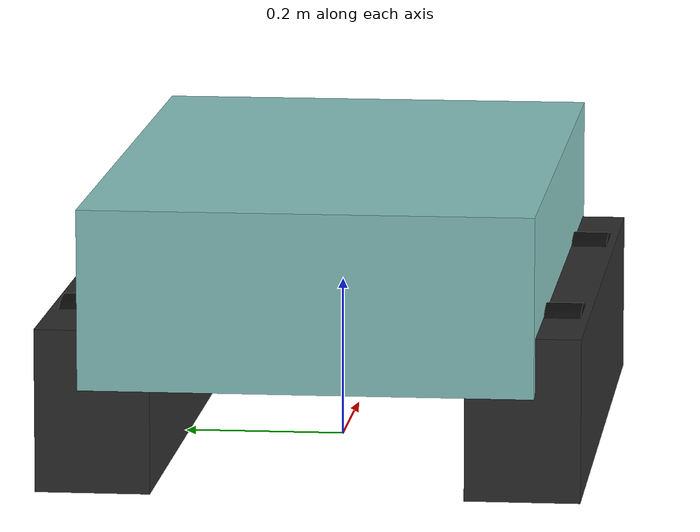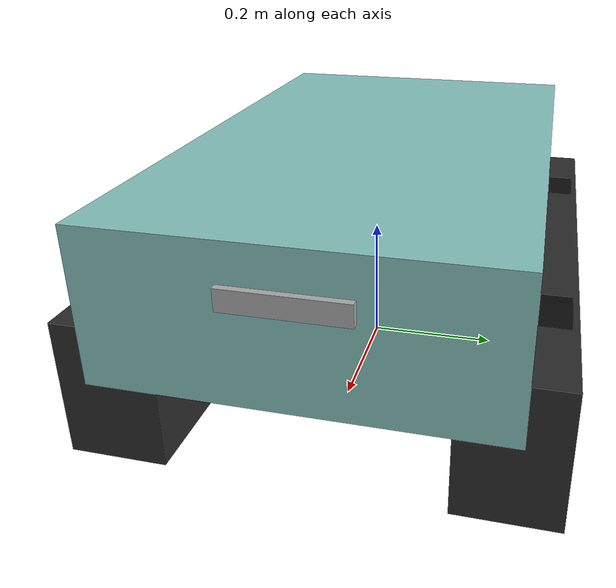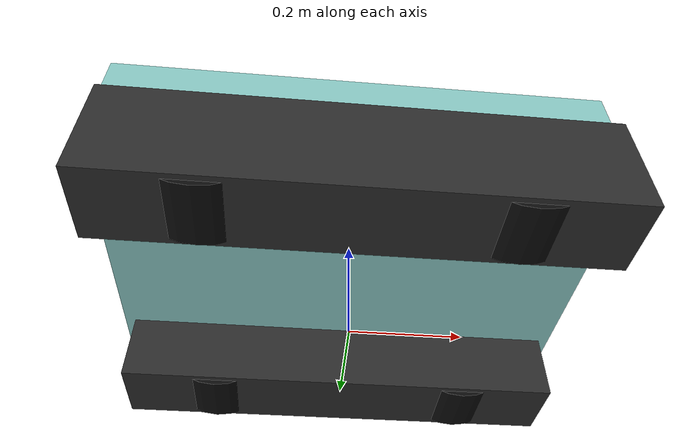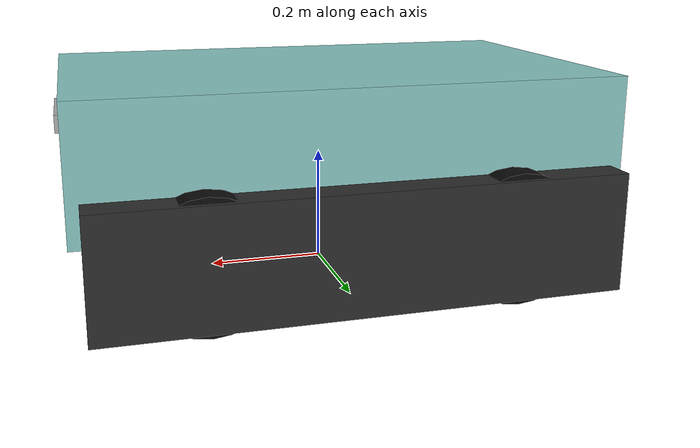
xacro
<?xml version="1.0"?>
<robot xmlns:xacro="http://www.ros.org/wiki/xacro" name="astra_robot">

  <!-- When true, Gazebo (Harmonic) sensor + plugin tags are included so the
       same model can be spawned in simulation. Set via:
         xacro astra_robot.urdf.xacro use_gazebo:=true -->
  <xacro:arg name="use_gazebo" default="false"/>

  <!-- ===================== Parameters (ARKOS-1, approx from drawing) ===================== -->
  <!-- Main body (the teal deck / frame) -->
  <xacro:property name="base_length"  value="0.90"/>
  <xacro:property name="base_width"   value="0.55"/>
  <xacro:property name="base_height"  value="0.22"/>
  <xacro:property name="base_mass"    value="100.0"/>
  <!-- height of the body bottom above the ground -->
  <xacro:property name="body_clearance" value="0.14"/>

  <!-- Tracks (visual shells) -->
  <xacro:property name="track_length" value="0.86"/>
  <xacro:property name="track_width"  value="0.14"/>
  <xacro:property name="track_height" value="0.20"/>

  <!-- Hidden drive wheels (skid-steer) -->
  <xacro:property name="wheel_radius" value="0.11"/>
  <xacro:property name="wheel_width"  value="0.12"/>
  <xacro:property name="wheel_mass"   value="5.0"/>
  <!-- lateral distance between left and right wheel centres -->
  <xacro:property name="wheel_separation" value="0.52"/>
  <!-- longitudinal distance between front and rear wheel axes -->
  <xacro:property name="wheel_base" value="0.50"/>

  <!-- Astra camera mounting: FRONT of the chassis, on top -->
  <xacro:property name="cam_x" value="0.44"/>
  <xacro:property name="cam_y" value="0.0"/>
  <xacro:property name="cam_z" value="0.18"/>

  <!-- Astra depth-to-RGB baseline (approx, from datasheet) -->
  <xacro:property name="cam_rgb_yoff"   value="-0.025"/>
  <xacro:property name="cam_depth_yoff" value="0.0"/>

  <xacro:property name="PI" value="3.14159265359"/>

  <!-- ===================== Inertia macros ===================== -->
  <xacro:macro name="box_inertia" params="m x y z">
    <inertial>
      <mass value="${m}"/>
      <inertia
        ixx="${m*(y*y+z*z)/12.0}" ixy="0.0" ixz="0.0"
        iyy="${m*(x*x+z*z)/12.0}" iyz="0.0"
        izz="${m*(x*x+y*y)/12.0}"/>
    </inertial>
  </xacro:macro>

  <xacro:macro name="cylinder_inertia" params="m r h">
    <inertial>
      <mass value="${m}"/>
      <inertia
        ixx="${m*(3*r*r+h*h)/12.0}" ixy="0.0" ixz="0.0"
        iyy="${m*(3*r*r+h*h)/12.0}" iyz="0.0"
        izz="${m*r*r/2.0}"/>
    </inertial>
  </xacro:macro>

  <!-- One hidden drive wheel. side: left(+1)/right(-1); lon: forward offset -->
  <xacro:macro name="drive_wheel" params="name reflect lon">
    <link name="${name}_wheel">
      <visual>
        <origin xyz="0 0 0" rpy="${PI/2} 0 0"/>
        <geometry>
          <cylinder radius="${wheel_radius}" length="${wheel_width}"/>
        </geometry>
        <material name="black"/>
      </visual>
      <collision>
        <origin xyz="0 0 0" rpy="${PI/2} 0 0"/>
        <geometry>
          <cylinder radius="${wheel_radius}" length="${wheel_width}"/>
        </geometry>
      </collision>
      <xacro:cylinder_inertia m="${wheel_mass}" r="${wheel_radius}" h="${wheel_width}"/>
    </link>

    <joint name="${name}_wheel_joint" type="continuous">
      <parent link="base_link"/>
      <child link="${name}_wheel"/>
      <origin xyz="${lon} ${reflect*wheel_separation/2.0} 0" rpy="0 0 0"/>
      <axis xyz="0 1 0"/>
      <dynamics damping="0.1" friction="0.2"/>
    </joint>
  </xacro:macro>

  <!-- Visual-only track shell covering the wheels on one side -->
  <xacro:macro name="track_visual" params="name reflect">
    <link name="${name}_track">
      <visual>
        <origin xyz="0 0 0" rpy="0 0 0"/>
        <geometry>
          <box size="${track_length} ${track_width} ${track_height}"/>
        </geometry>
        <material name="dark_grey"/>
      </visual>
      <!-- no collision: contact/drive is handled by the hidden wheels -->
      <inertial>
        <mass value="1.0"/>
        <inertia ixx="0.01" ixy="0" ixz="0" iyy="0.01" iyz="0" izz="0.01"/>
      </inertial>
    </link>
    <joint name="${name}_track_joint" type="fixed">
      <parent link="base_link"/>
      <child link="${name}_track"/>
      <origin xyz="0 ${reflect*wheel_separation/2.0} 0" rpy="0 0 0"/>
    </joint>
  </xacro:macro>

  <!-- ===================== Materials ===================== -->
  <material name="teal">      <color rgba="0.55 0.80 0.78 1.0"/></material>
  <material name="dark_grey"> <color rgba="0.18 0.18 0.18 1.0"/></material>
  <material name="light_grey"><color rgba="0.7 0.7 0.7 1.0"/></material>
  <material name="black">     <color rgba="0.05 0.05 0.05 1.0"/></material>

  <!-- ===================== base_footprint ===================== -->
  <!-- base_footprint sits on the ground directly below base_link -->
  <link name="base_footprint"/>

  <joint name="base_footprint_joint" type="fixed">
    <parent link="base_footprint"/>
    <child link="base_link"/>
    <!-- base_link origin at the wheel axis height -->
    <origin xyz="0 0 ${wheel_radius}" rpy="0 0 0"/>
  </joint>

  <!-- ===================== Body (chassis deck) ===================== -->
  <link name="base_link">
    <visual>
      <origin xyz="0 0 ${body_clearance - wheel_radius + base_height/2.0}" rpy="0 0 0"/>
      <geometry>
        <box size="${base_length} ${base_width} ${base_height}"/>
      </geometry>
      <material name="teal"/>
    </visual>
    <collision>
      <origin xyz="0 0 ${body_clearance - wheel_radius + base_height/2.0}" rpy="0 0 0"/>
      <geometry>
        <box size="${base_length} ${base_width} ${base_height}"/>
      </geometry>
    </collision>
    <xacro:box_inertia m="${base_mass}" x="${base_length}" y="${base_width}" z="${base_height}"/>
  </link>

  <!-- ===================== Tracks (visual) ===================== -->
  <xacro:track_visual name="left"  reflect="1"/>
  <xacro:track_visual name="right" reflect="-1"/>

  <!-- ===================== Drive wheels (4, hidden inside tracks) ===================== -->
  <xacro:drive_wheel name="front_left"  reflect="1"  lon="${ wheel_base/2.0}"/>
  <xacro:drive_wheel name="rear_left"   reflect="1"  lon="${-wheel_base/2.0}"/>
  <xacro:drive_wheel name="front_right" reflect="-1" lon="${ wheel_base/2.0}"/>
  <xacro:drive_wheel name="rear_right"  reflect="-1" lon="${-wheel_base/2.0}"/>

  <!-- ===================== Astra camera (FIXED to chassis, front) ===================== -->
  <link name="camera_link">
    <visual>
      <origin xyz="0 0 0" rpy="0 0 0"/>
      <geometry>
        <!-- Astra body ~ 165 x 30 x 40 mm -->
        <box size="0.04 0.165 0.03"/>
      </geometry>
      <material name="light_grey"/>
    </visual>
    <collision>
      <geometry><box size="0.04 0.165 0.03"/></geometry>
    </collision>
    <inertial>
      <mass value="0.3"/>
      <inertia ixx="1e-4" ixy="0" ixz="0" iyy="1e-4" iyz="0" izz="1e-4"/>
    </inertial>
  </link>

  <joint name="camera_joint" type="fixed">
    <parent link="base_link"/>
    <child link="camera_link"/>
    <origin xyz="${cam_x} ${cam_y} ${cam_z}" rpy="0 0 0"/>
  </joint>

  <!-- Depth frame + optical frame -->
  <link name="camera_depth_frame"/>
  <joint name="camera_depth_joint" type="fixed">
    <parent link="camera_link"/>
    <child link="camera_depth_frame"/>
    <origin xyz="0 ${cam_depth_yoff} 0" rpy="0 0 0"/>
  </joint>

  <link name="camera_depth_optical_frame"/>
  <joint name="camera_depth_optical_joint" type="fixed">
    <parent link="camera_depth_frame"/>
    <child link="camera_depth_optical_frame"/>
    <origin xyz="0 0 0" rpy="${-PI/2} 0 ${-PI/2}"/>
  </joint>

  <!-- RGB frame + optical frame -->
  <link name="camera_rgb_frame"/>
  <joint name="camera_rgb_joint" type="fixed">
    <parent link="camera_link"/>
    <child link="camera_rgb_frame"/>
    <origin xyz="0 ${cam_rgb_yoff} 0" rpy="0 0 0"/>
  </joint>

  <link name="camera_rgb_optical_frame"/>
  <joint name="camera_rgb_optical_joint" type="fixed">
    <parent link="camera_rgb_frame"/>
    <child link="camera_rgb_optical_frame"/>
    <origin xyz="0 0 0" rpy="${-PI/2} 0 ${-PI/2}"/>
  </joint>

  <!-- ===================== Gazebo (simulation only) ===================== -->
  <xacro:if value="$(arg use_gazebo)">
    <xacro:include filename="$(find astra_description)/urdf/astra_robot.gazebo.xacro"/>
    <xacro:astra_gazebo/>
  </xacro:if>

</robot>
